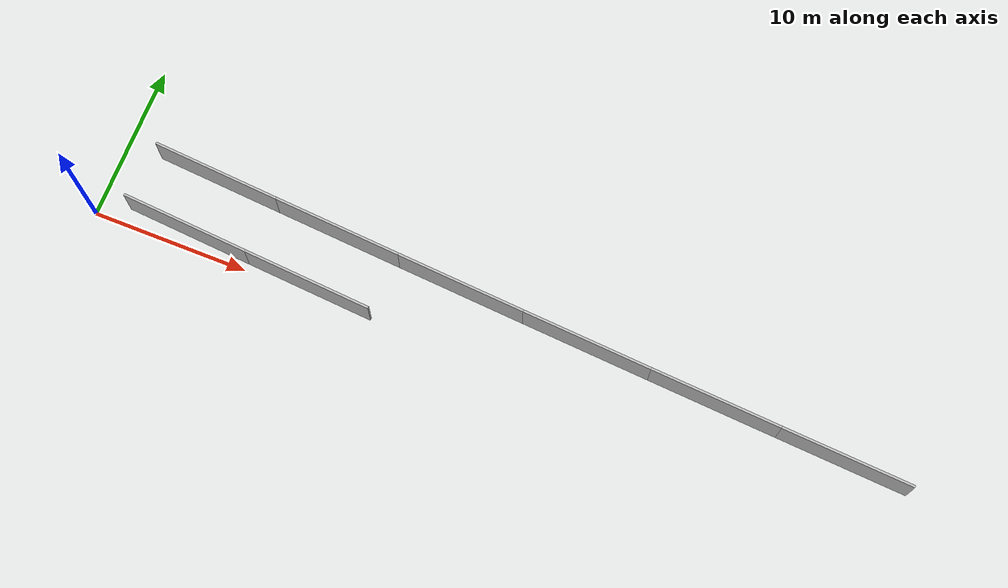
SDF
<?xml version="1.0" ?>
<sdf version="1.6">
  <model name="sps_3902">
    <pose frame="">0 0 0 0 -0 0</pose>
    <static>1</static>
    <self_collide>0</self_collide>
    <allow_auto_disable>0</allow_auto_disable>
    <link name="Wall4245">
      <kinematic>0</kinematic>
      <gravity>1</gravity>
      <self_collide>0</self_collide>
      <collision name="collision">
        <geometry>
          <box>
            <size>8.25171 0.15 2.5</size>
          </box>
        </geometry>
        <pose frame="">0 0 0 0 -0 0</pose>
      </collision>
      <visual name="visual">
        <geometry>
          <box>
            <size>8.25171 0.15 2.5</size>
          </box>
        </geometry>
        <pose frame="">0 0 0 0 -0 0</pose>
        <cast_shadows>1</cast_shadows>
        <transparency>0.0</transparency>
      </visual>
      <pose frame="">6.38045 4.57417 1.25 0 0 -0.0719725</pose>
    </link>
    <link name="Wall4246">
      <kinematic>0</kinematic>
      <gravity>1</gravity>
      <self_collide>0</self_collide>
      <collision name="collision">
        <geometry>
          <box>
            <size>8.2522 0.15 2.5</size>
          </box>
        </geometry>
        <pose frame="">0 0 0 0 -0 0</pose>
      </collision>
      <visual name="visual">
        <geometry>
          <box>
            <size>8.2522 0.15 2.5</size>
          </box>
        </geometry>
        <pose frame="">0 0 0 0 -0 0</pose>
        <cast_shadows>1</cast_shadows>
        <transparency>0.0</transparency>
      </visual>
      <pose frame="">14.6117 3.99068 1.25 0 0 -0.0695659</pose>
    </link>
    <link name="Wall4247">
      <kinematic>0</kinematic>
      <gravity>1</gravity>
      <self_collide>0</self_collide>
      <collision name="collision">
        <geometry>
          <box>
            <size>8.25187 0.15 2.5</size>
          </box>
        </geometry>
        <pose frame="">0 0 0 0 -0 0</pose>
      </collision>
      <visual name="visual">
        <geometry>
          <box>
            <size>8.25187 0.15 2.5</size>
          </box>
        </geometry>
        <pose frame="">0 0 0 0 -0 0</pose>
        <cast_shadows>1</cast_shadows>
        <transparency>0.0</transparency>
      </visual>
      <pose frame="">22.8445 3.42659 1.25 0 0 -0.0672555</pose>
    </link>
    <link name="Wall4248">
      <kinematic>0</kinematic>
      <gravity>1</gravity>
      <self_collide>0</self_collide>
      <collision name="collision">
        <geometry>
          <box>
            <size>8.25174 0.15 2.5</size>
          </box>
        </geometry>
        <pose frame="">0 0 0 0 -0 0</pose>
      </collision>
      <visual name="visual">
        <geometry>
          <box>
            <size>8.25174 0.15 2.5</size>
          </box>
        </geometry>
        <pose frame="">0 0 0 0 -0 0</pose>
        <cast_shadows>1</cast_shadows>
        <transparency>0.0</transparency>
      </visual>
      <pose frame="">31.0783 2.88179 1.25 0 0 -0.0648845</pose>
    </link>
    <link name="Wall4249">
      <kinematic>0</kinematic>
      <gravity>1</gravity>
      <self_collide>0</self_collide>
      <collision name="collision">
        <geometry>
          <box>
            <size>8.25213 0.15 2.5</size>
          </box>
        </geometry>
        <pose frame="">0 0 0 0 -0 0</pose>
      </collision>
      <visual name="visual">
        <geometry>
          <box>
            <size>8.25213 0.15 2.5</size>
          </box>
        </geometry>
        <pose frame="">0 0 0 0 -0 0</pose>
        <cast_shadows>1</cast_shadows>
        <transparency>0.0</transparency>
      </visual>
      <pose frame="">39.3135 2.35658 1.25 0 0 -0.0624949</pose>
    </link>
    <link name="Wall4250">
      <kinematic>0</kinematic>
      <gravity>1</gravity>
      <self_collide>0</self_collide>
      <collision name="collision">
        <geometry>
          <box>
            <size>8.25169 0.15 2.5</size>
          </box>
        </geometry>
        <pose frame="">0 0 0 0 -0 0</pose>
      </collision>
      <visual name="visual">
        <geometry>
          <box>
            <size>8.25169 0.15 2.5</size>
          </box>
        </geometry>
        <pose frame="">0 0 0 0 -0 0</pose>
        <cast_shadows>1</cast_shadows>
        <transparency>0.0</transparency>
      </visual>
      <pose frame="">47.5499 1.85078 1.25 0 0 -0.0601714</pose>
    </link>
    <link name="Wall8987">
      <kinematic>0</kinematic>
      <gravity>1</gravity>
      <self_collide>0</self_collide>
      <collision name="collision">
        <geometry>
          <box>
            <size>8.26177 0.15 2.5</size>
          </box>
        </geometry>
        <pose frame="">0 0 0 0 -0 0</pose>
      </collision>
      <visual name="visual">
        <geometry>
          <box>
            <size>8.26177 0.15 2.5</size>
          </box>
        </geometry>
        <pose frame="">0 0 0 0 -0 0</pose>
        <cast_shadows>1</cast_shadows>
        <transparency>0.0</transparency>
      </visual>
      <pose frame="">5.99825 0.835494 1.25 0 0 -0.0720107</pose>
    </link>
    <link name="Wall8988">
      <kinematic>0</kinematic>
      <gravity>1</gravity>
      <self_collide>0</self_collide>
      <collision name="collision">
        <geometry>
          <box>
            <size>8.26225 0.15 2.5</size>
          </box>
        </geometry>
        <pose frame="">0 0 0 0 -0 0</pose>
      </collision>
      <visual name="visual">
        <geometry>
          <box>
            <size>8.26225 0.15 2.5</size>
          </box>
        </geometry>
        <pose frame="">0 0 0 0 -0 0</pose>
        <cast_shadows>1</cast_shadows>
        <transparency>0.0</transparency>
      </visual>
      <pose frame="">14.2396 0.250991 1.25 0 0 -0.0695996</pose>
    </link>
  </model>
</sdf>
